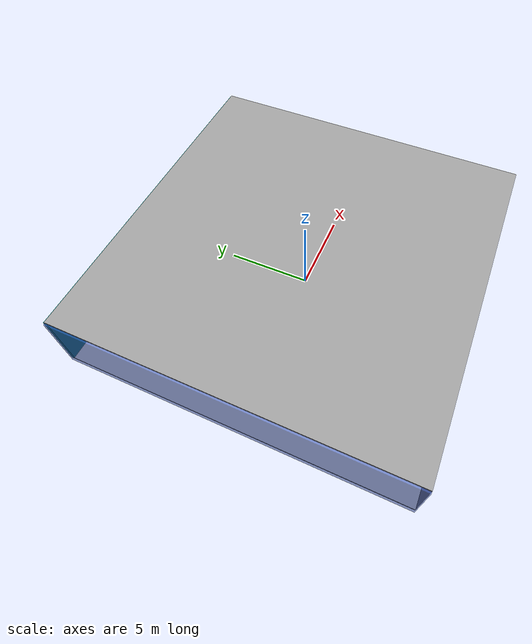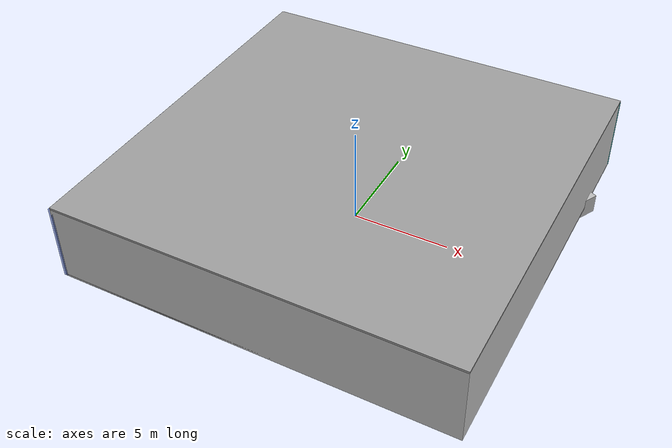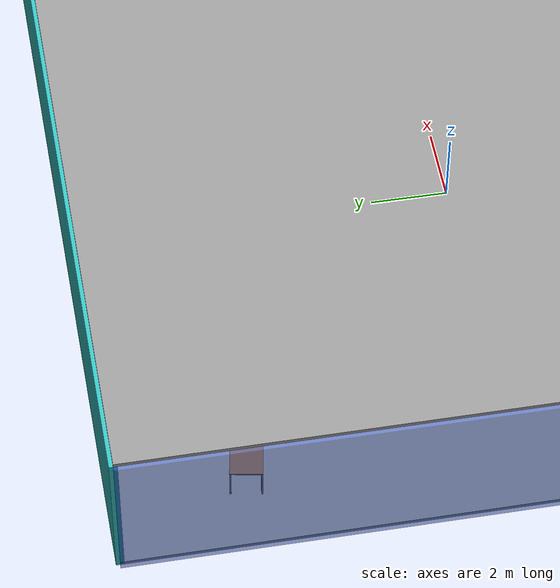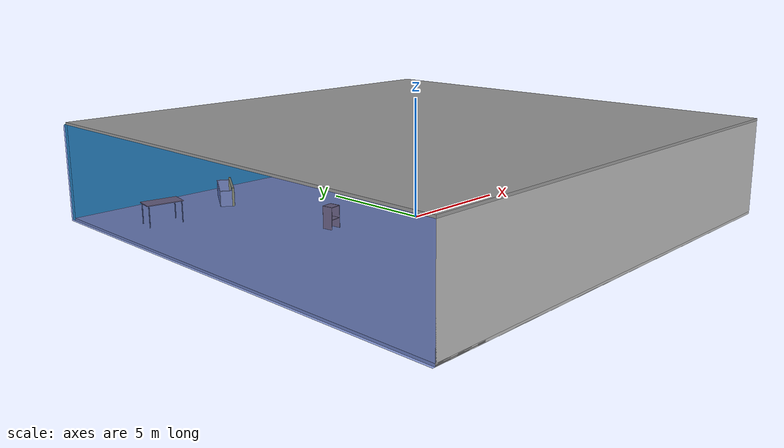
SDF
<sdf version="1.4">
 <world name="default">
  <physics type="ode">
   <max_step_size>0.001</max_step_size>
   <real_time_factor>1</real_time_factor>
   <real_time_update_rate>1000</real_time_update_rate>
   <gravity>0 0 -9.8</gravity>
  </physics>
  <scene><ambient>0.4 0.4 0.4 1</ambient><background>0.7 0.7 0.7 1</background><shadows>1</shadows></scene>
  <model name="Surrounding">
   <static>1</static>
   <link name="Ceiling">
    <collision name="Ceiling_Collision"><geometry><box><size>20 20 0.1</size></box></geometry></collision>
    <visual name="Ceiling_Visual">
     <geometry><box><size>20 20 0.1</size></box></geometry>
     <material>
      <script><uri>file://media/materials/scripts/gazebo.material</uri><name>Gazebo/GreyGradientSky</name></script>
     </material>
    </visual>
    <pose>0 0 4.05 0 0 0</pose>
   </link>
   <link name="Wall_South">
    <collision name="Wall_South_Collision">
     <geometry><box><size>20 0 4</size></box></geometry>
     <pose>0 0 2 0 -0 0</pose>
    </collision>
    <visual name="Wall_South_Visual">
     <pose>0 0 2 0 -0 0</pose>
     <geometry><box><size>20 0 4</size></box></geometry>
     <material>
      <script><uri>file://media/materials/scripts/gazebo.material</uri><name>Gazebo/Pioneer2Body</name></script>
     </material>
    </visual>
    <velocity_decay><linear>0</linear><angular>0</angular></velocity_decay>
    <pose>0 -10 0 0 -0 0</pose>
   </link>
   <link name="Wall_East">
    <collision name="Wall_21_Collision">
     <geometry><box><size>20 0 4</size></box></geometry>
     <pose>0 0 2 0 -0 0</pose>
    </collision>
    <visual name="Wall_21_Visual">
     <pose>0 0 2 0 -0 0</pose>
     <geometry><box><size>20 0 4</size></box></geometry>
     <material>
      <script><uri>file://media/materials/scripts/gazebo.material</uri><name>Gazebo/WhiteGlow</name></script>
     </material>
    </visual>
    <velocity_decay><linear>0</linear><angular>0</angular></velocity_decay>
    <pose>10 0 0 0 -0 1.5708</pose>
   </link>
   <link name="Wall_North">
    <collision name="Wall_22_Collision">
     <geometry><box><size>20 0.2 4</size></box></geometry>
     <pose>0 0 2 0 -0 0</pose>
    </collision>
    <visual name="Wall_22_Visual">
     <pose>0 0 2 0 -0 0</pose>
     <geometry><box><size>20 0.2 4</size></box></geometry>
     <material>
      <script>
       <uri>file://media/materials/scripts/gazebo.material</uri>
       <name>Gazebo/TurquoiseGlowOutline</name>
      </script>
     </material>
    </visual>
    <velocity_decay><linear>0</linear><angular>0</angular></velocity_decay>
    <pose>0 10 0 0 -0 0</pose>
   </link>
   <link name="Wall_West">
    <collision name="Wall_23_Collision">
     <geometry><box><size>20 0.2 4</size></box></geometry>
     <pose>0 0 2 0 -0 0</pose>
    </collision>
    <visual name="Wall_23_Visual">
     <pose>0 0 2 0 -0 0</pose>
     <geometry><box><size>20 0.2 4</size></box></geometry>
     <material>
      <script><uri>file://media/materials/scripts/gazebo.material</uri><name>Gazebo/BlueTransparent</name></script>
     </material>
    </visual>
    <velocity_decay><linear>0</linear><angular>0</angular></velocity_decay>
    <pose>-10 0 0 0 0 -1.5708</pose>
   </link>
   <link name="Ground_link">
    <collision name="collision">
     <pose>0 0 .05 0 -0 0</pose>
     <geometry><box><size>20 20 0.1</size></box></geometry>
    </collision>
    <visual name="visual">
     <pose>0 0 .05 0 -0 0</pose>
     <geometry><box><size>20 20 0.1</size></box></geometry>
     <material>
      <script><uri>file://media/materials/scripts/gazebo.material</uri><name>Gazebo/Pioneer2Body</name></script>
     </material>
    </visual>
   </link>
   <static>1</static>
  </model>
  <spherical_coordinates>
   <surface_model>EARTH_WGS84</surface_model>
   <latitude_deg>0</latitude_deg>
   <longitude_deg>0</longitude_deg>
   <elevation>0</elevation>
   <heading_deg>0</heading_deg>
  </spherical_coordinates>
  <light name="lightball_0" type="diffuse">
   <diffuse>0.8 0.8 0.8 1</diffuse>
   <specular>0.2 0.2 0.2 1</specular>
   <attenuation>
    <range>100</range>
    <constant>0.7</constant>
    <linear>0.01</linear>
    <quadratic>0.001</quadratic>
   </attenuation>
   <direction>-0.5 0.1 -0.9</direction>
   <pose>-0.747420504336 8.65503655169 2.56922161881 0 0 0</pose>
  </light>
  <light name="lightball_1" type="diffuse">
   <diffuse>0.8 0.8 0.8 1</diffuse>
   <specular>0.2 0.2 0.2 1</specular>
   <attenuation>
    <range>100</range>
    <constant>0.7</constant>
    <linear>0.01</linear>
    <quadratic>0.001</quadratic>
   </attenuation>
   <direction>-0.5 0.1 -0.9</direction>
   <pose>3.89868410216 -7.7014940165 3.40108491606 0 0 0</pose>
  </light>
  <light name="lightball_2" type="diffuse">
   <diffuse>0.8 0.8 0.8 1</diffuse>
   <specular>0.2 0.2 0.2 1</specular>
   <attenuation>
    <range>100</range>
    <constant>0.7</constant>
    <linear>0.01</linear>
    <quadratic>0.001</quadratic>
   </attenuation>
   <direction>-0.5 0.1 -0.9</direction>
   <pose>-4.83798867708 -4.45340159238 1.01699991978 0 0 0</pose>
  </light>
  <light name="lightball_3" type="diffuse">
   <diffuse>0.8 0.8 0.8 1</diffuse>
   <specular>0.2 0.2 0.2 1</specular>
   <attenuation>
    <range>100</range>
    <constant>0.7</constant>
    <linear>0.01</linear>
    <quadratic>0.001</quadratic>
   </attenuation>
   <direction>-0.5 0.1 -0.9</direction>
   <pose>-1.89135691695 -8.28198744302 1.22358943342 0 0 0</pose>
  </light>
  <light name="lightball_4" type="diffuse">
   <diffuse>0.8 0.8 0.8 1</diffuse>
   <specular>0.2 0.2 0.2 1</specular>
   <attenuation>
    <range>100</range>
    <constant>0.7</constant>
    <linear>0.01</linear>
    <quadratic>0.001</quadratic>
   </attenuation>
   <direction>-0.5 0.1 -0.9</direction>
   <pose>-1.40538382068 7.00325919258 1.08300693264 0 0 0</pose>
  </light>
  <light name="lightball_5" type="diffuse">
   <diffuse>0.8 0.8 0.8 1</diffuse>
   <specular>0.2 0.2 0.2 1</specular>
   <attenuation>
    <range>100</range>
    <constant>0.7</constant>
    <linear>0.01</linear>
    <quadratic>0.001</quadratic>
   </attenuation>
   <direction>-0.5 0.1 -0.9</direction>
   <pose>-9.76364388661 -6.83933150196 2.20131812757 0 0 0</pose>
  </light>
  <light name="lightball_6" type="diffuse">
   <diffuse>0.8 0.8 0.8 1</diffuse>
   <specular>0.2 0.2 0.2 1</specular>
   <attenuation>
    <range>100</range>
    <constant>0.7</constant>
    <linear>0.01</linear>
    <quadratic>0.001</quadratic>
   </attenuation>
   <direction>-0.5 0.1 -0.9</direction>
   <pose>6.43635044964 7.11302333436 2.09874532138 0 0 0</pose>
  </light>
  <light name="lightball_7" type="diffuse">
   <diffuse>0.8 0.8 0.8 1</diffuse>
   <specular>0.2 0.2 0.2 1</specular>
   <attenuation>
    <range>100</range>
    <constant>0.7</constant>
    <linear>0.01</linear>
    <quadratic>0.001</quadratic>
   </attenuation>
   <direction>-0.5 0.1 -0.9</direction>
   <pose>-6.71528648687 -1.74545405935 3.1625555045 0 0 0</pose>
  </light>
  <light name="lightball_8" type="diffuse">
   <diffuse>0.8 0.8 0.8 1</diffuse>
   <specular>0.2 0.2 0.2 1</specular>
   <attenuation>
    <range>100</range>
    <constant>0.7</constant>
    <linear>0.01</linear>
    <quadratic>0.001</quadratic>
   </attenuation>
   <direction>-0.5 0.1 -0.9</direction>
   <pose>1.0345359922 6.04360750067 1.87009158325 0 0 0</pose>
  </light>
  <light name="lightball_9" type="diffuse">
   <diffuse>0.8 0.8 0.8 1</diffuse>
   <specular>0.2 0.2 0.2 1</specular>
   <attenuation>
    <range>100</range>
    <constant>0.7</constant>
    <linear>0.01</linear>
    <quadratic>0.001</quadratic>
   </attenuation>
   <direction>-0.5 0.1 -0.9</direction>
   <pose>6.8102786504 -0.132378626937 3.80624411973 0 0 0</pose>
  </light>
  <light name="lightball_10" type="diffuse">
   <diffuse>0.8 0.8 0.8 1</diffuse>
   <specular>0.2 0.2 0.2 1</specular>
   <attenuation>
    <range>100</range>
    <constant>0.7</constant>
    <linear>0.01</linear>
    <quadratic>0.001</quadratic>
   </attenuation>
   <direction>-0.5 0.1 -0.9</direction>
   <pose>-2.95900723785 -2.60846943952 1.35747551072 0 0 0</pose>
  </light>
  <light name="lightball_11" type="diffuse">
   <diffuse>0.8 0.8 0.8 1</diffuse>
   <specular>0.2 0.2 0.2 1</specular>
   <attenuation>
    <range>100</range>
    <constant>0.7</constant>
    <linear>0.01</linear>
    <quadratic>0.001</quadratic>
   </attenuation>
   <direction>-0.5 0.1 -0.9</direction>
   <pose>-6.30789969976 7.78188830106 2.12954195895 0 0 0</pose>
  </light>
  <include><uri>model://table</uri><pose>-7.89917825936 6.62617522519 0 0 0 2.9705946827</pose></include>
  <include><uri>model://cabinet</uri><pose>-3.70793317499 1.12337688175 0 0 0 1.71085624123</pose></include>
  <include>
   <uri>model://robocup_3Dsim_goal</uri>
   <pose>-3.84694643532 7.63628749507 0 0 0 2.59940096497</pose>
  </include>
  <include><uri>model://table</uri><pose>4.63460221264 -7.3314904957 0 0 0 2.80098296607</pose></include>
  <include>
   <uri>model://textured_shapes</uri>
   <pose>8.33201470514 7.00979594563 0 0 0 1.09692796352</pose>
  </include>
 </world>
</sdf>

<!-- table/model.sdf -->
<sdf version="1.5">
  <model name="table">
    <static>true</static>
    <link name="link">
      <collision name="surface">
        <pose>0 0 1.0 0 0 0</pose>
        <geometry>
          <box>
            <size>1.5 0.8 0.03</size>
          </box>
        </geometry>
        <surface>
          <friction>
            <ode>
              <mu>0.6</mu>
              <mu2>0.6</mu2>
            </ode>
          </friction>
        </surface>
      </collision>
      <visual name="visual1">
        <pose>0 0 1.0 0 0 0</pose>
        <geometry>
          <box>
            <size>1.5 0.8 0.03</size>
          </box>
        </geometry>
        <material>
          <script>
            <uri>model://media/materials/scripts/gazebo.material</uri>
            <name>Gazebo/Wood</name>
          </script>
        </material>
      </visual>
      <collision name="front_left_leg">
        <pose>0.68 0.38 0.5 0 0 0</pose>
        <geometry>
          <cylinder>
            <radius>0.02</radius>
            <length>1.0</length>
          </cylinder>
        </geometry>
      </collision>
      <visual name="front_left_leg">
        <pose>0.68 0.38 0.5 0 0 0</pose>
        <geometry>
          <cylinder>
            <radius>0.02</radius>
            <length>1.0</length>
          </cylinder>
        </geometry>
        <material>
          <script>
            <uri>model://media/materials/scripts/gazebo.material</uri>
            <name>Gazebo/Grey</name>
          </script>
        </material>
      </visual>
      <collision name="front_right_leg">
        <pose>0.68 -0.38 0.5 0 0 0</pose>
        <geometry>
          <cylinder>
            <radius>0.02</radius>
            <length>1.0</length>
          </cylinder>
        </geometry>
      </collision>
      <visual name="front_right_leg">
        <pose>0.68 -0.38 0.5 0 0 0</pose>
        <geometry>
          <cylinder>
            <radius>0.02</radius>
            <length>1.0</length>
          </cylinder>
        </geometry>
        <material>
          <script>
            <uri>model://media/materials/scripts/gazebo.material</uri>
            <name>Gazebo/Grey</name>
          </script>
        </material>
      </visual>
      <collision name="back_right_leg">
        <pose>-0.68 -0.38 0.5 0 0 0</pose>
        <geometry>
          <cylinder>
            <radius>0.02</radius>
            <length>1.0</length>
          </cylinder>
        </geometry>
      </collision>
      <visual name="back_right_leg">
        <pose>-0.68 -0.38 0.5 0 0 0</pose>
        <geometry>
          <cylinder>
            <radius>0.02</radius>
            <length>1.0</length>
          </cylinder>
        </geometry>
        <material>
          <script>
            <uri>model://media/materials/scripts/gazebo.material</uri>
            <name>Gazebo/Grey</name>
          </script>
        </material>
      </visual>
      <collision name="back_left_leg">
        <pose>-0.68 0.38 0.5 0 0 0</pose>
        <geometry>
          <cylinder>
            <radius>0.02</radius>
            <length>1.0</length>
          </cylinder>
        </geometry>
      </collision>
      <visual name="back_left_leg">
        <pose>-0.68 0.38 0.5 0 0 0</pose>
        <geometry>
          <cylinder>
            <radius>0.02</radius>
            <length>1.0</length>
          </cylinder>
        </geometry>
        <material>
          <script>
            <uri>model://media/materials/scripts/gazebo.material</uri>
            <name>Gazebo/Grey</name>
          </script>
        </material>
      </visual>
    </link>
  </model>
</sdf>

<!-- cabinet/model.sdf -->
<sdf version="1.5">
  <model name="cabinet">
    <static>true</static>
    <link name="cabinet_bottom_plate">
      <inertial>
        <pose>0 0 -1 0 0 0</pose>
        <inertia>
          <ixx>2.050000</ixx>
          <ixy>0</ixy>
          <ixz>0</ixz>
          <iyy>2.050000</iyy>
          <iyz>0</iyz>
          <izz>2.050000</izz>
        </inertia>
        <mass>25.000000</mass>
      </inertial>
      <collision name="cabinet_bottom_plate_geom">
        <pose>0 0 0.010000 0 0 0</pose>
        <geometry>
          <box>
            <size>0.450000 0.450000 0.020000</size>
          </box>
        </geometry>
      </collision>
      <visual name="cabinet_bottom_plate_geom_visual">
        <pose>0 0 0.010000 0 0 0</pose>
        <geometry>
          <box>
            <size>0.450000 0.450000 0.020000</size>
          </box>
        </geometry>
        <material>
          <script>
            <uri>model://media/materials/scripts/gazebo.material</uri>
            <name>Gazebo/Wood</name>
          </script>
        </material>
      </visual>
      <collision name="cabinet_bottom_plate_geom_cabinet_back_plate">
        <pose>0.235000 0 0.510000 0 0 0</pose>
        <geometry>
          <box>
            <size>0.020000 0.450000 1.020000</size>
          </box>
        </geometry>
      </collision>
      <visual name="cabinet_bottom_plate_geom_cabinet_back_plate_visual">
        <pose>0.235000 0 0.510000 0 0 0</pose>
        <geometry>
          <box>
            <size>0.020000 0.450000 1.020000</size>
          </box>
        </geometry>
        <material>
          <script>
            <uri>model://media/materials/scripts/gazebo.material</uri>
            <name>Gazebo/Wood</name>
          </script>
        </material>
      </visual>
      <collision name="cabinet_bottom_plate_geom_cabinet_left_plate">
        <pose>0 0.235000 0.510000 0 0 0</pose>
        <geometry>
          <box>
            <size>0.450000 0.020000 1.020000</size>
          </box>
        </geometry>
      </collision>
      <visual name="cabinet_bottom_plate_geom_cabinet_left_plate_visual">
        <pose>0 0.235000 0.510000 0 0 0</pose>
        <geometry>
          <box>
            <size>0.450000 0.020000 1.020000</size>
          </box>
        </geometry>
        <material>
          <script>
            <uri>model://media/materials/scripts/gazebo.material</uri>
            <name>Gazebo/Wood</name>
          </script>
        </material>
      </visual>
      <collision name="cabinet_bottom_plate_geom_cabinet_middle_plate">
        <pose>0 0 0.510000 0 0 0</pose>
        <geometry>
          <box>
            <size>0.450000 0.450000 0.020000</size>
          </box>
        </geometry>
      </collision>
      <visual name="cabinet_bottom_plate_geom_cabinet_middle_plate_visual">
        <pose>0 0 0.510000 0 0 0</pose>
        <geometry>
          <box>
            <size>0.450000 0.450000 0.020000</size>
          </box>
        </geometry>
        <material>
          <script>
            <uri>model://media/materials/scripts/gazebo.material</uri>
            <name>Gazebo/Wood</name>
          </script>
        </material>
      </visual>
      <collision name="cabinet_bottom_plate_geom_cabinet_right_plate">
        <pose>0 -0.235000 0.510000 0 0 0</pose>
        <geometry>
          <box>
            <size>0.450000 0.020000 1.020000</size>
          </box>
        </geometry>
      </collision>
      <visual name="cabinet_bottom_plate_geom_cabinet_right_plate_visual">
        <pose>0 -0.235000 0.510000 0 0 0</pose>
        <geometry>
          <box>
            <size>0.450000 0.020000 1.020000</size>
          </box>
        </geometry>
        <material>
          <script>
            <uri>model://media/materials/scripts/gazebo.material</uri>
            <name>Gazebo/Wood</name>
          </script>
        </material>
      </visual>
      <collision name="cabinet_bottom_plate_geom_cabinet_top_plate">
        <pose>0 0 1.010000 0 0 0</pose>
        <geometry>
          <box>
            <size>0.450000 0.450000 0.020000</size>
          </box>
        </geometry>
      </collision>
      <visual name="cabinet_bottom_plate_geom_cabinet_top_plate_visual">
        <pose>0 0 1.010000 0 0 0</pose>
        <geometry>
          <box>
            <size>0.450000 0.450000 0.020000</size>
          </box>
        </geometry>
        <material>
          <script>
            <uri>model://media/materials/scripts/gazebo.material</uri>
            <name>Gazebo/Wood</name>
          </script>
        </material>
      </visual>
    </link>
  </model>
</sdf>

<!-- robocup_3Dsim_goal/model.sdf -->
<sdf version="1.5">
  <model name="robocup_3d_goal">
    <static>true</static>
    <link name="left_post">
      <pose>0 1.05 0.45 0 0 0</pose>
      <collision name="collision">
        <geometry>
          <cylinder>
            <radius>0.05</radius>
            <length>0.9</length>
          </cylinder>
        </geometry>
      </collision>
      <visual name="visual">
        <geometry>
          <cylinder>
            <radius>0.05</radius>
            <length>0.9</length>
          </cylinder>
        </geometry>
        <material>
          <script>
            <uri>file://media/materials/scripts/gazebo.material</uri>
            <name>Gazebo/ZincYellow</name>
          </script>
        </material>
      </visual>
    </link>
    <link name="left_support_horiz_lower">
      <pose>0.30 1.05 0.01 0 0 0</pose>
      <collision name="collision">
        <geometry>
          <box>
            <size>0.50 0.02 0.02</size>
          </box>
        </geometry>
      </collision>
      <visual name="visual">
        <geometry>
          <box>
            <size>0.50 0.02 0.02</size>
          </box>
        </geometry>
        <material>
          <script>
            <uri>file://media/materials/scripts/gazebo.material</uri>
            <name>Gazebo/White</name>
          </script>
        </material>
      </visual>
    </link>
    <link name="left_support_horiz_upper">
      <pose>0.30 1.05 0.79 0 0 0</pose>
      <collision name="collision">
        <geometry>
          <box>
            <size>0.50 0.02 0.02</size>
          </box>
        </geometry>
      </collision>
      <visual name="visual">
        <geometry>
          <box>
            <size>0.50 0.02 0.02</size>
          </box>
        </geometry>
        <material>
          <script>
            <uri>file://media/materials/scripts/gazebo.material</uri>
            <name>Gazebo/White</name>
          </script>
        </material>
      </visual>
    </link>
    <link name="left_support_vertical">
      <pose>0.56 1.05 0.4 0 1.5708 0</pose>
      <collision name="collision">
        <geometry>
          <box>
            <size>0.80 0.02 0.02</size>
          </box>
        </geometry>
      </collision>
      <visual name="visual">
        <geometry>
          <box>
            <size>0.80 0.02 0.02</size>
          </box>
        </geometry>
        <material>
          <script>
            <uri>file://media/materials/scripts/gazebo.material</uri>
            <name>Gazebo/White</name>
          </script>
        </material>
      </visual>
    </link>
    <link name="right_support_horiz_lower">
      <pose>0.30 -1.05 0.01 0 0 0</pose>
      <collision name="collision">
        <geometry>
          <box>
            <size>0.50 0.02 0.02</size>
          </box>
        </geometry>
      </collision>
      <visual name="visual">
        <geometry>
          <box>
            <size>0.50 0.02 0.02</size>
          </box>
        </geometry>
        <material>
          <script>
            <uri>file://media/materials/scripts/gazebo.material</uri>
            <name>Gazebo/White</name>
          </script>
        </material>
      </visual>
    </link>
    <link name="right_support_horiz_upper">
      <pose>0.30 -1.05 0.79 0 0 0</pose>
      <collision name="collision">
        <geometry>
          <box>
            <size>0.50 0.02 0.02</size>
          </box>
        </geometry>
      </collision>
      <visual name="visual">
        <geometry>
          <box>
            <size>0.50 0.02 0.02</size>
          </box>
        </geometry>
        <material>
          <script>
            <uri>file://media/materials/scripts/gazebo.material</uri>
            <name>Gazebo/White</name>
          </script>
        </material>
      </visual>
    </link>
    <link name="right_support_vertical">
      <pose>0.56 -1.05 0.4 0 1.5708 0</pose>
      <collision name="collision">
        <geometry>
          <box>
            <size>0.80 0.02 0.02</size>
          </box>
        </geometry>
      </collision>
      <visual name="visual">
        <geometry>
          <box>
            <size>0.80 0.02 0.02</size>
          </box>
        </geometry>
        <material>
          <script>
            <uri>file://media/materials/scripts/gazebo.material</uri>
            <name>Gazebo/White</name>
          </script>
        </material>
      </visual>
    </link>
    <link name="center_support_horiz_lower">
      <pose>0.56 0 0.01 0 1.5708 0</pose>
      <collision name="collision">
        <geometry>
          <box>
            <size>0.02 2.08 0.02</size>
          </box>
        </geometry>
      </collision>
      <visual name="visual">
        <geometry>
          <box>
            <size>0.02 2.08 0.02</size>
          </box>
        </geometry>
        <material>
          <script>
            <uri>file://media/materials/scripts/gazebo.material</uri>
            <name>Gazebo/White</name>
          </script>
        </material>
      </visual>
    </link>
    <link name="center_support_horiz_upper">
      <pose>0.56 0 0.79 0 1.5708 0</pose>
      <collision name="collision">
        <geometry>
          <box>
            <size>0.02 2.08 0.02</size>
          </box>
        </geometry>
      </collision>
      <visual name="visual">
        <geometry>
          <box>
            <size>0.02 2.08 0.02</size>
          </box>
        </geometry>
        <material>
          <script>
            <uri>file://media/materials/scripts/gazebo.material</uri>
            <name>Gazebo/White</name>
          </script>
        </material>
      </visual>
    </link>
    <link name="right_post">
      <pose>0 -1.05 0.45 0 0 0</pose>
      <collision name="collision">
        <geometry>
          <cylinder>
            <radius>0.05</radius>
            <length>0.9</length>
          </cylinder>
        </geometry>
      </collision>
      <visual name="visual">
        <geometry>
          <cylinder>
            <radius>0.05</radius>
            <length>0.9</length>
          </cylinder>
        </geometry>
        <material>
          <script>
            <uri>file://media/materials/scripts/gazebo.material</uri>
            <name>Gazebo/ZincYellow</name>
          </script>
        </material>
      </visual>
    </link>
    <link name="crossbar">
      <pose>0 0 0.85 1.57 1.57 0</pose>
      <collision name="collision">
        <geometry>
          <cylinder>
            <radius>0.05</radius>
            <length>2.0</length>
          </cylinder>
        </geometry>
      </collision>
      <visual name="visual">
        <geometry>
          <cylinder>
            <radius>0.05</radius>
            <length>2.0</length>
          </cylinder>
        </geometry>
        <material>
          <script>
            <uri>file://media/materials/scripts/gazebo.material</uri>
            <name>Gazebo/ZincYellow</name>
          </script>
        </material>
      </visual>
    </link>
    <link name="center_net">
      <pose>0.56 0 0.40 0 0 0</pose>
      <collision name="collision">
        <geometry>
          <box>
            <size>0.01 2.1 0.80</size>
          </box>
        </geometry>
      </collision>
      <visual name="visual">
        <geometry>
          <box>
            <size>0.01 2.1 0.80</size>
          </box>
        </geometry>
        <material>
          <script>
            <uri>model://../model_source/models/robocup09_spl_field/materials/scripts/</uri>
            <uri>model://../model_source/models/robocup09_spl_field/materials/textures/</uri>
            <name>RoboCup/Net</name>
          </script>
        </material>
      </visual>
    </link>
    <link name="left_net">
      <pose>0.30 1.05 0.40 0 0 0</pose>
      <collision name="collision">
        <geometry>
          <box>
            <size>0.50 0.01 0.76</size>
          </box>
        </geometry>
      </collision>
      <visual name="visual">
        <geometry>
          <box>
            <size>0.50 0.01 0.76</size>
          </box>
        </geometry>
        <material>
          <script>
            <uri>model://../model_source/models/robocup09_spl_field/materials/scripts/</uri>
            <uri>model://../model_source/models/robocup09_spl_field/materials/textures/</uri>
            <name>RoboCup/Net</name>
          </script>
        </material>
      </visual>
    </link>
    <link name="right_net">
      <pose>0.30 -1.05 0.40 0 0 0</pose>
      <collision name="collision">
        <geometry>
          <box>
            <size>0.50 0.01 0.76</size>
          </box>
        </geometry>
      </collision>
      <visual name="visual">
        <geometry>
          <box>
            <size>0.50 0.01 0.76</size>
          </box>
        </geometry>
        <material>
          <script>
            <uri>model://../model_source/models/robocup09_spl_field/materials/scripts/</uri>
            <uri>model://../model_source/models/robocup09_spl_field/materials/textures/</uri>
            <name>RoboCup/Net</name>
          </script>
        </material>
      </visual>
    </link>
  </model>
</sdf>

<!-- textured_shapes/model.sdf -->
<sdf version="1.6">
  <model name="textured_shapes">
    <pose>0 0 0.5 0 0 0</pose>
    <link name="box">
      <pose>0 -1.5 0 0 0 0</pose>
      <collision name="collision">
        <geometry>
          <box>
            <size>1 1 1</size>
          </box>
        </geometry>
      </collision>
      <visual name="visual">
        <geometry>
          <box>
            <size>1 1 1</size>
          </box>
        </geometry>
        <material>
          <script>
            <uri>model://../model_source/models/textured_shapes/materials/scripts</uri>
            <uri>model://../model_source/models/textured_shapes/materials/textures</uri>
            <name>TexturedShape/Squares</name>
          </script>
        </material>
      </visual>
    </link>
    <link name="sphere">
      <collision name="collision">
        <geometry>
          <sphere>
            <radius>0.5</radius>
          </sphere>
        </geometry>
      </collision>
      <visual name="visual">
        <geometry>
          <sphere>
            <radius>0.5</radius>
          </sphere>
        </geometry>
        <material>
          <script>
            <uri>model://../model_source/models/textured_shapes/materials/scripts</uri>
            <uri>model://../model_source/models/textured_shapes/materials/textures</uri>
            <name>TexturedShape/Squares</name>
          </script>
        </material>
      </visual>
    </link>
    <link name="cylinder">
      <pose>0 1.5 0 0 0 0</pose>
      <collision name="collision">
        <geometry>
          <cylinder>
            <radius>0.5</radius>
            <length>1</length>
          </cylinder>
        </geometry>
      </collision>
      <visual name="visual">
        <geometry>
          <cylinder>
            <radius>0.5</radius>
            <length>1</length>
          </cylinder>
        </geometry>
        <material>
          <script>
            <uri>model://../model_source/models/textured_shapes/materials/scripts</uri>
            <uri>model://../model_source/models/textured_shapes/materials/textures</uri>
            <name>TexturedShape/Squares</name>
          </script>
        </material>
      </visual>
    </link>
  </model>
</sdf>
